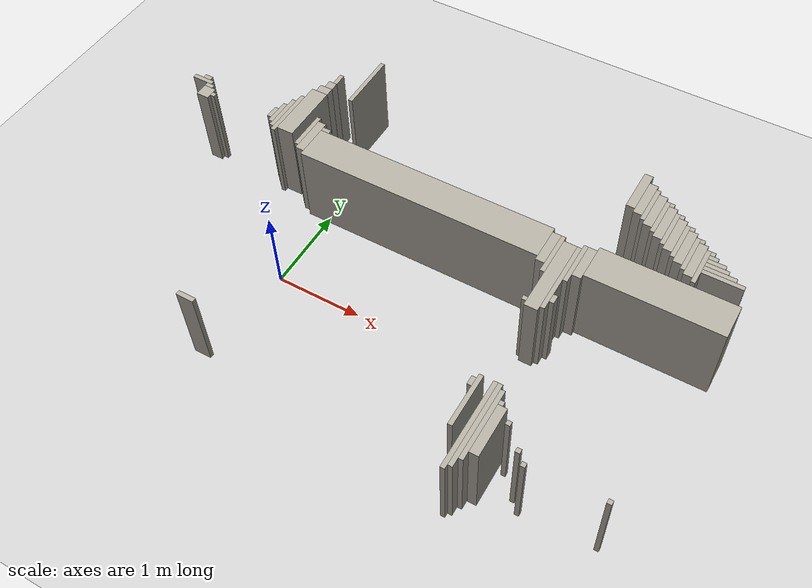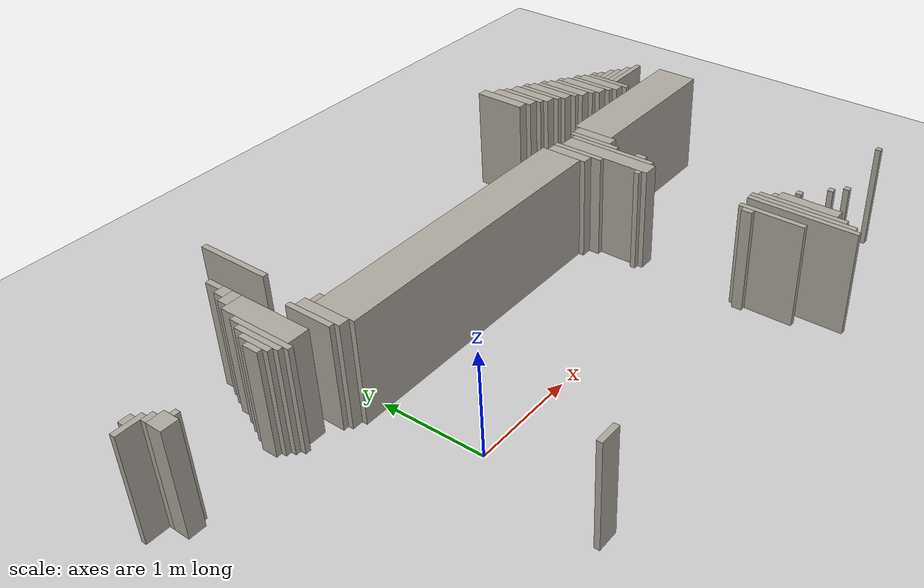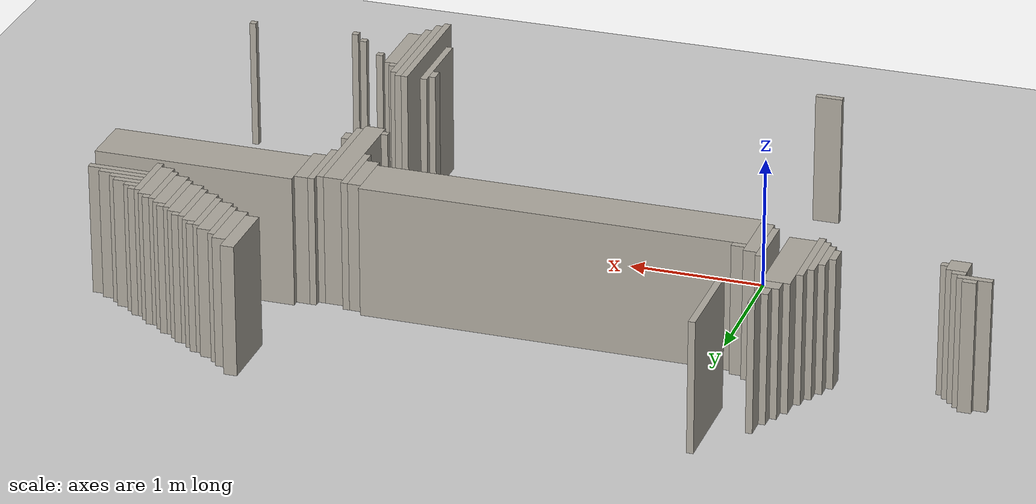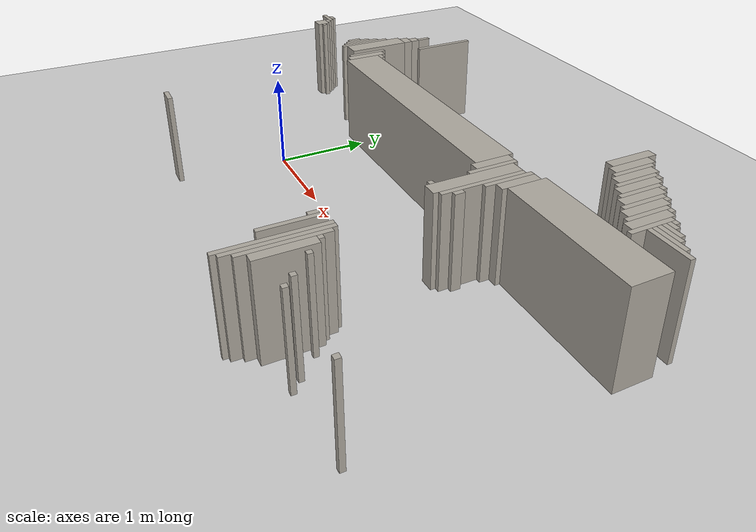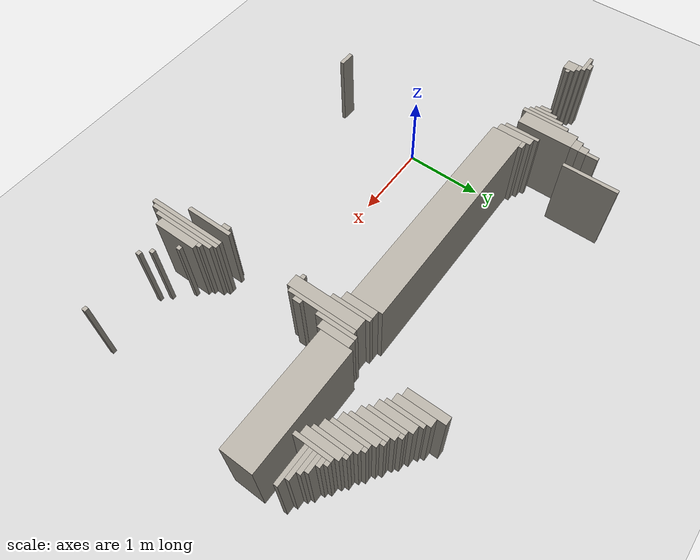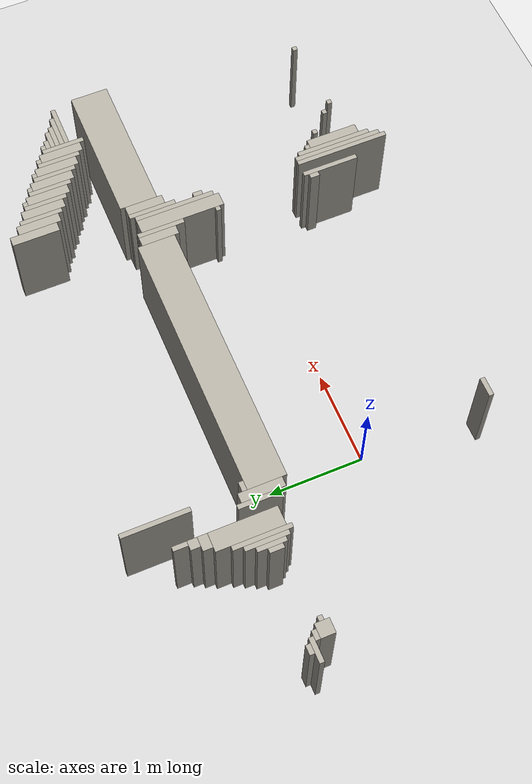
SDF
<sdf version="1.6">
 <world name="fr079_office">
  <include><uri>model://sun</uri></include>
  <include><uri>model://ground_plane</uri></include>
  <model name="fr079_office_walls">
   <static>true</static>
   <link name="w1643">
    <pose>2.927 -1.056 0.500 0 0 0</pose>
    <collision name="c"><geometry><box><size>0.050 1.000 1.000</size></box></geometry></collision>
    <visual name="v">
     <geometry><box><size>0.050 1.000 1.000</size></box></geometry>
     <material><ambient>0.68 0.66 0.62 1</ambient><diffuse>0.68 0.66 0.62 1</diffuse></material>
    </visual>
   </link>
   <link name="w1670">
    <pose>2.977 -1.031 0.500 0 0 0</pose>
    <collision name="c"><geometry><box><size>0.050 0.950 1.000</size></box></geometry></collision>
    <visual name="v">
     <geometry><box><size>0.050 0.950 1.000</size></box></geometry>
     <material><ambient>0.68 0.66 0.62 1</ambient><diffuse>0.68 0.66 0.62 1</diffuse></material>
    </visual>
   </link>
   <link name="w1696">
    <pose>3.027 -1.006 0.500 0 0 0</pose>
    <collision name="c"><geometry><box><size>0.050 0.800 1.000</size></box></geometry></collision>
    <visual name="v">
     <geometry><box><size>0.050 0.800 1.000</size></box></geometry>
     <material><ambient>0.68 0.66 0.62 1</ambient><diffuse>0.68 0.66 0.62 1</diffuse></material>
    </visual>
   </link>
   <link name="w1724">
    <pose>3.102 -1.031 0.500 0 0 0</pose>
    <collision name="c"><geometry><box><size>0.100 0.550 1.000</size></box></geometry></collision>
    <visual name="v">
     <geometry><box><size>0.100 0.550 1.000</size></box></geometry>
     <material><ambient>0.68 0.66 0.62 1</ambient><diffuse>0.68 0.66 0.62 1</diffuse></material>
    </visual>
   </link>
   <link name="w1745">
    <pose>-0.148 -1.181 0.500 0 0 0</pose>
    <collision name="c"><geometry><box><size>0.200 0.050 1.000</size></box></geometry></collision>
    <visual name="v">
     <geometry><box><size>0.200 0.050 1.000</size></box></geometry>
     <material><ambient>0.68 0.66 0.62 1</ambient><diffuse>0.68 0.66 0.62 1</diffuse></material>
    </visual>
   </link>
   <link name="w1746">
    <pose>3.527 -1.181 0.500 0 0 0</pose>
    <collision name="c"><geometry><box><size>0.050 0.050 1.000</size></box></geometry></collision>
    <visual name="v">
     <geometry><box><size>0.050 0.050 1.000</size></box></geometry>
     <material><ambient>0.68 0.66 0.62 1</ambient><diffuse>0.68 0.66 0.62 1</diffuse></material>
    </visual>
   </link>
   <link name="w1750">
    <pose>2.777 -0.856 0.500 0 0 0</pose>
    <collision name="c"><geometry><box><size>0.050 0.600 1.000</size></box></geometry></collision>
    <visual name="v">
     <geometry><box><size>0.050 0.600 1.000</size></box></geometry>
     <material><ambient>0.68 0.66 0.62 1</ambient><diffuse>0.68 0.66 0.62 1</diffuse></material>
    </visual>
   </link>
   <link name="w1751">
    <pose>4.327 -1.131 0.500 0 0 0</pose>
    <collision name="c"><geometry><box><size>0.050 0.050 1.000</size></box></geometry></collision>
    <visual name="v">
     <geometry><box><size>0.050 0.050 1.000</size></box></geometry>
     <material><ambient>0.68 0.66 0.62 1</ambient><diffuse>0.68 0.66 0.62 1</diffuse></material>
    </visual>
   </link>
   <link name="w1757">
    <pose>3.427 -1.081 0.500 0 0 0</pose>
    <collision name="c"><geometry><box><size>0.050 0.050 1.000</size></box></geometry></collision>
    <visual name="v">
     <geometry><box><size>0.050 0.050 1.000</size></box></geometry>
     <material><ambient>0.68 0.66 0.62 1</ambient><diffuse>0.68 0.66 0.62 1</diffuse></material>
    </visual>
   </link>
   <link name="w1774">
    <pose>3.227 -0.881 0.500 0 0 0</pose>
    <collision name="c"><geometry><box><size>0.050 0.050 1.000</size></box></geometry></collision>
    <visual name="v">
     <geometry><box><size>0.050 0.050 1.000</size></box></geometry>
     <material><ambient>0.68 0.66 0.62 1</ambient><diffuse>0.68 0.66 0.62 1</diffuse></material>
    </visual>
   </link>
   <link name="w1783">
    <pose>3.077 -0.731 0.500 0 0 0</pose>
    <collision name="c"><geometry><box><size>0.050 0.050 1.000</size></box></geometry></collision>
    <visual name="v">
     <geometry><box><size>0.050 0.050 1.000</size></box></geometry>
     <material><ambient>0.68 0.66 0.62 1</ambient><diffuse>0.68 0.66 0.62 1</diffuse></material>
    </visual>
   </link>
   <link name="w1789">
    <pose>2.727 -0.656 0.500 0 0 0</pose>
    <collision name="c"><geometry><box><size>0.050 0.100 1.000</size></box></geometry></collision>
    <visual name="v">
     <geometry><box><size>0.050 0.100 1.000</size></box></geometry>
     <material><ambient>0.68 0.66 0.62 1</ambient><diffuse>0.68 0.66 0.62 1</diffuse></material>
    </visual>
   </link>
   <link name="w1799">
    <pose>2.827 0.794 0.500 0 0 0</pose>
    <collision name="c"><geometry><box><size>0.150 0.900 1.000</size></box></geometry></collision>
    <visual name="v">
     <geometry><box><size>0.150 0.900 1.000</size></box></geometry>
     <material><ambient>0.68 0.66 0.62 1</ambient><diffuse>0.68 0.66 0.62 1</diffuse></material>
    </visual>
   </link>
   <link name="w1801">
    <pose>2.727 0.419 0.500 0 0 0</pose>
    <collision name="c"><geometry><box><size>0.050 0.050 1.000</size></box></geometry></collision>
    <visual name="v">
     <geometry><box><size>0.050 0.050 1.000</size></box></geometry>
     <material><ambient>0.68 0.66 0.62 1</ambient><diffuse>0.68 0.66 0.62 1</diffuse></material>
    </visual>
   </link>
   <link name="w1802">
    <pose>2.927 0.819 0.500 0 0 0</pose>
    <collision name="c"><geometry><box><size>0.050 0.850 1.000</size></box></geometry></collision>
    <visual name="v">
     <geometry><box><size>0.050 0.850 1.000</size></box></geometry>
     <material><ambient>0.68 0.66 0.62 1</ambient><diffuse>0.68 0.66 0.62 1</diffuse></material>
    </visual>
   </link>
   <link name="w1808">
    <pose>2.977 0.544 0.500 0 0 0</pose>
    <collision name="c"><geometry><box><size>0.050 0.100 1.000</size></box></geometry></collision>
    <visual name="v">
     <geometry><box><size>0.050 0.100 1.000</size></box></geometry>
     <material><ambient>0.68 0.66 0.62 1</ambient><diffuse>0.68 0.66 0.62 1</diffuse></material>
    </visual>
   </link>
   <link name="w1817">
    <pose>2.727 1.044 0.500 0 0 0</pose>
    <collision name="c"><geometry><box><size>0.050 0.500 1.000</size></box></geometry></collision>
    <visual name="v">
     <geometry><box><size>0.050 0.500 1.000</size></box></geometry>
     <material><ambient>0.68 0.66 0.62 1</ambient><diffuse>0.68 0.66 0.62 1</diffuse></material>
    </visual>
   </link>
   <link name="w1818">
    <pose>2.977 1.044 0.500 0 0 0</pose>
    <collision name="c"><geometry><box><size>0.050 0.500 1.000</size></box></geometry></collision>
    <visual name="v">
     <geometry><box><size>0.050 0.500 1.000</size></box></geometry>
     <material><ambient>0.68 0.66 0.62 1</ambient><diffuse>0.68 0.66 0.62 1</diffuse></material>
    </visual>
   </link>
   <link name="w1820">
    <pose>2.652 1.094 0.500 0 0 0</pose>
    <collision name="c"><geometry><box><size>0.100 0.400 1.000</size></box></geometry></collision>
    <visual name="v">
     <geometry><box><size>0.100 0.400 1.000</size></box></geometry>
     <material><ambient>0.68 0.66 0.62 1</ambient><diffuse>0.68 0.66 0.62 1</diffuse></material>
    </visual>
   </link>
   <link name="w1821">
    <pose>3.052 1.094 0.500 0 0 0</pose>
    <collision name="c"><geometry><box><size>0.100 0.400 1.000</size></box></geometry></collision>
    <visual name="v">
     <geometry><box><size>0.100 0.400 1.000</size></box></geometry>
     <material><ambient>0.68 0.66 0.62 1</ambient><diffuse>0.68 0.66 0.62 1</diffuse></material>
    </visual>
   </link>
   <link name="w1824">
    <pose>1.177 1.144 0.500 0 0 0</pose>
    <collision name="c"><geometry><box><size>2.850 0.400 1.000</size></box></geometry></collision>
    <visual name="v">
     <geometry><box><size>2.850 0.400 1.000</size></box></geometry>
     <material><ambient>0.68 0.66 0.62 1</ambient><diffuse>0.68 0.66 0.62 1</diffuse></material>
    </visual>
   </link>
   <link name="w1825">
    <pose>3.852 1.144 0.500 0 0 0</pose>
    <collision name="c"><geometry><box><size>1.500 0.400 1.000</size></box></geometry></collision>
    <visual name="v">
     <geometry><box><size>1.500 0.400 1.000</size></box></geometry>
     <material><ambient>0.68 0.66 0.62 1</ambient><diffuse>0.68 0.66 0.62 1</diffuse></material>
    </visual>
   </link>
   <link name="w1831">
    <pose>-0.298 1.219 0.500 0 0 0</pose>
    <collision name="c"><geometry><box><size>0.100 0.450 1.000</size></box></geometry></collision>
    <visual name="v">
     <geometry><box><size>0.100 0.450 1.000</size></box></geometry>
     <material><ambient>0.68 0.66 0.62 1</ambient><diffuse>0.68 0.66 0.62 1</diffuse></material>
    </visual>
   </link>
   <link name="w1846">
    <pose>-0.373 1.269 0.500 0 0 0</pose>
    <collision name="c"><geometry><box><size>0.050 0.450 1.000</size></box></geometry></collision>
    <visual name="v">
     <geometry><box><size>0.050 0.450 1.000</size></box></geometry>
     <material><ambient>0.68 0.66 0.62 1</ambient><diffuse>0.68 0.66 0.62 1</diffuse></material>
    </visual>
   </link>
   <link name="w1865">
    <pose>-0.723 1.394 0.500 0 0 0</pose>
    <collision name="c"><geometry><box><size>0.050 0.600 1.000</size></box></geometry></collision>
    <visual name="v">
     <geometry><box><size>0.050 0.600 1.000</size></box></geometry>
     <material><ambient>0.68 0.66 0.62 1</ambient><diffuse>0.68 0.66 0.62 1</diffuse></material>
    </visual>
   </link>
   <link name="w1889">
    <pose>-1.723 1.219 0.500 0 0 0</pose>
    <collision name="c"><geometry><box><size>0.150 0.150 1.000</size></box></geometry></collision>
    <visual name="v">
     <geometry><box><size>0.150 0.150 1.000</size></box></geometry>
     <material><ambient>0.68 0.66 0.62 1</ambient><diffuse>0.68 0.66 0.62 1</diffuse></material>
    </visual>
   </link>
   <link name="w1890">
    <pose>-0.773 1.369 0.500 0 0 0</pose>
    <collision name="c"><geometry><box><size>0.050 0.450 1.000</size></box></geometry></collision>
    <visual name="v">
     <geometry><box><size>0.050 0.450 1.000</size></box></geometry>
     <material><ambient>0.68 0.66 0.62 1</ambient><diffuse>0.68 0.66 0.62 1</diffuse></material>
    </visual>
   </link>
   <link name="w1891">
    <pose>-0.598 1.494 0.500 0 0 0</pose>
    <collision name="c"><geometry><box><size>0.200 0.700 1.000</size></box></geometry></collision>
    <visual name="v">
     <geometry><box><size>0.200 0.700 1.000</size></box></geometry>
     <material><ambient>0.68 0.66 0.62 1</ambient><diffuse>0.68 0.66 0.62 1</diffuse></material>
    </visual>
   </link>
   <link name="w1920">
    <pose>-1.623 1.219 0.500 0 0 0</pose>
    <collision name="c"><geometry><box><size>0.050 0.050 1.000</size></box></geometry></collision>
    <visual name="v">
     <geometry><box><size>0.050 0.050 1.000</size></box></geometry>
     <material><ambient>0.68 0.66 0.62 1</ambient><diffuse>0.68 0.66 0.62 1</diffuse></material>
    </visual>
   </link>
   <link name="w1921">
    <pose>-0.823 1.344 0.500 0 0 0</pose>
    <collision name="c"><geometry><box><size>0.050 0.300 1.000</size></box></geometry></collision>
    <visual name="v">
     <geometry><box><size>0.050 0.300 1.000</size></box></geometry>
     <material><ambient>0.68 0.66 0.62 1</ambient><diffuse>0.68 0.66 0.62 1</diffuse></material>
    </visual>
   </link>
   <link name="w1949">
    <pose>-0.873 1.319 0.500 0 0 0</pose>
    <collision name="c"><geometry><box><size>0.050 0.150 1.000</size></box></geometry></collision>
    <visual name="v">
     <geometry><box><size>0.050 0.150 1.000</size></box></geometry>
     <material><ambient>0.68 0.66 0.62 1</ambient><diffuse>0.68 0.66 0.62 1</diffuse></material>
    </visual>
   </link>
   <link name="w1966">
    <pose>-1.748 1.319 0.500 0 0 0</pose>
    <collision name="c"><geometry><box><size>0.100 0.050 1.000</size></box></geometry></collision>
    <visual name="v">
     <geometry><box><size>0.100 0.050 1.000</size></box></geometry>
     <material><ambient>0.68 0.66 0.62 1</ambient><diffuse>0.68 0.66 0.62 1</diffuse></material>
    </visual>
   </link>
   <link name="w1980">
    <pose>-1.873 1.369 0.500 0 0 0</pose>
    <collision name="c"><geometry><box><size>0.250 0.050 1.000</size></box></geometry></collision>
    <visual name="v">
     <geometry><box><size>0.250 0.050 1.000</size></box></geometry>
     <material><ambient>0.68 0.66 0.62 1</ambient><diffuse>0.68 0.66 0.62 1</diffuse></material>
    </visual>
   </link>
   <link name="w1981">
    <pose>-0.198 1.369 0.500 0 0 0</pose>
    <collision name="c"><geometry><box><size>0.100 0.050 1.000</size></box></geometry></collision>
    <visual name="v">
     <geometry><box><size>0.100 0.050 1.000</size></box></geometry>
     <material><ambient>0.68 0.66 0.62 1</ambient><diffuse>0.68 0.66 0.62 1</diffuse></material>
    </visual>
   </link>
   <link name="w1992">
    <pose>-1.848 1.419 0.500 0 0 0</pose>
    <collision name="c"><geometry><box><size>0.100 0.050 1.000</size></box></geometry></collision>
    <visual name="v">
     <geometry><box><size>0.100 0.050 1.000</size></box></geometry>
     <material><ambient>0.68 0.66 0.62 1</ambient><diffuse>0.68 0.66 0.62 1</diffuse></material>
    </visual>
   </link>
   <link name="w1993">
    <pose>4.077 1.619 0.500 0 0 0</pose>
    <collision name="c"><geometry><box><size>0.050 0.450 1.000</size></box></geometry></collision>
    <visual name="v">
     <geometry><box><size>0.050 0.450 1.000</size></box></geometry>
     <material><ambient>0.68 0.66 0.62 1</ambient><diffuse>0.68 0.66 0.62 1</diffuse></material>
    </visual>
   </link>
   <link name="w2012">
    <pose>4.002 1.669 0.500 0 0 0</pose>
    <collision name="c"><geometry><box><size>0.100 0.450 1.000</size></box></geometry></collision>
    <visual name="v">
     <geometry><box><size>0.100 0.450 1.000</size></box></geometry>
     <material><ambient>0.68 0.66 0.62 1</ambient><diffuse>0.68 0.66 0.62 1</diffuse></material>
    </visual>
   </link>
   <link name="w2029">
    <pose>3.927 1.719 0.500 0 0 0</pose>
    <collision name="c"><geometry><box><size>0.050 0.450 1.000</size></box></geometry></collision>
    <visual name="v">
     <geometry><box><size>0.050 0.450 1.000</size></box></geometry>
     <material><ambient>0.68 0.66 0.62 1</ambient><diffuse>0.68 0.66 0.62 1</diffuse></material>
    </visual>
   </link>
   <link name="w2045">
    <pose>3.852 1.769 0.500 0 0 0</pose>
    <collision name="c"><geometry><box><size>0.100 0.450 1.000</size></box></geometry></collision>
    <visual name="v">
     <geometry><box><size>0.100 0.450 1.000</size></box></geometry>
     <material><ambient>0.68 0.66 0.62 1</ambient><diffuse>0.68 0.66 0.62 1</diffuse></material>
    </visual>
   </link>
   <link name="w2046">
    <pose>4.327 1.569 0.500 0 0 0</pose>
    <collision name="c"><geometry><box><size>0.450 0.050 1.000</size></box></geometry></collision>
    <visual name="v">
     <geometry><box><size>0.450 0.050 1.000</size></box></geometry>
     <material><ambient>0.68 0.66 0.62 1</ambient><diffuse>0.68 0.66 0.62 1</diffuse></material>
    </visual>
   </link>
   <link name="w2060">
    <pose>3.777 1.819 0.500 0 0 0</pose>
    <collision name="c"><geometry><box><size>0.050 0.450 1.000</size></box></geometry></collision>
    <visual name="v">
     <geometry><box><size>0.050 0.450 1.000</size></box></geometry>
     <material><ambient>0.68 0.66 0.62 1</ambient><diffuse>0.68 0.66 0.62 1</diffuse></material>
    </visual>
   </link>
   <link name="w2061">
    <pose>4.277 1.619 0.500 0 0 0</pose>
    <collision name="c"><geometry><box><size>0.350 0.050 1.000</size></box></geometry></collision>
    <visual name="v">
     <geometry><box><size>0.350 0.050 1.000</size></box></geometry>
     <material><ambient>0.68 0.66 0.62 1</ambient><diffuse>0.68 0.66 0.62 1</diffuse></material>
    </visual>
   </link>
   <link name="w2073">
    <pose>3.702 1.869 0.500 0 0 0</pose>
    <collision name="c"><geometry><box><size>0.100 0.450 1.000</size></box></geometry></collision>
    <visual name="v">
     <geometry><box><size>0.100 0.450 1.000</size></box></geometry>
     <material><ambient>0.68 0.66 0.62 1</ambient><diffuse>0.68 0.66 0.62 1</diffuse></material>
    </visual>
   </link>
   <link name="w2074">
    <pose>4.227 1.669 0.500 0 0 0</pose>
    <collision name="c"><geometry><box><size>0.250 0.050 1.000</size></box></geometry></collision>
    <visual name="v">
     <geometry><box><size>0.250 0.050 1.000</size></box></geometry>
     <material><ambient>0.68 0.66 0.62 1</ambient><diffuse>0.68 0.66 0.62 1</diffuse></material>
    </visual>
   </link>
   <link name="w2086">
    <pose>3.627 1.919 0.500 0 0 0</pose>
    <collision name="c"><geometry><box><size>0.050 0.450 1.000</size></box></geometry></collision>
    <visual name="v">
     <geometry><box><size>0.050 0.450 1.000</size></box></geometry>
     <material><ambient>0.68 0.66 0.62 1</ambient><diffuse>0.68 0.66 0.62 1</diffuse></material>
    </visual>
   </link>
   <link name="w2087">
    <pose>4.202 1.719 0.500 0 0 0</pose>
    <collision name="c"><geometry><box><size>0.200 0.050 1.000</size></box></geometry></collision>
    <visual name="v">
     <geometry><box><size>0.200 0.050 1.000</size></box></geometry>
     <material><ambient>0.68 0.66 0.62 1</ambient><diffuse>0.68 0.66 0.62 1</diffuse></material>
    </visual>
   </link>
   <link name="w2098">
    <pose>3.552 1.969 0.500 0 0 0</pose>
    <collision name="c"><geometry><box><size>0.100 0.450 1.000</size></box></geometry></collision>
    <visual name="v">
     <geometry><box><size>0.100 0.450 1.000</size></box></geometry>
     <material><ambient>0.68 0.66 0.62 1</ambient><diffuse>0.68 0.66 0.62 1</diffuse></material>
    </visual>
   </link>
   <link name="w2099">
    <pose>4.152 1.769 0.500 0 0 0</pose>
    <collision name="c"><geometry><box><size>0.100 0.050 1.000</size></box></geometry></collision>
    <visual name="v">
     <geometry><box><size>0.100 0.050 1.000</size></box></geometry>
     <material><ambient>0.68 0.66 0.62 1</ambient><diffuse>0.68 0.66 0.62 1</diffuse></material>
    </visual>
   </link>
   <link name="w2116">
    <pose>3.477 2.019 0.500 0 0 0</pose>
    <collision name="c"><geometry><box><size>0.050 0.450 1.000</size></box></geometry></collision>
    <visual name="v">
     <geometry><box><size>0.050 0.450 1.000</size></box></geometry>
     <material><ambient>0.68 0.66 0.62 1</ambient><diffuse>0.68 0.66 0.62 1</diffuse></material>
    </visual>
   </link>
   <link name="w2117">
    <pose>4.127 1.819 0.500 0 0 0</pose>
    <collision name="c"><geometry><box><size>0.050 0.050 1.000</size></box></geometry></collision>
    <visual name="v">
     <geometry><box><size>0.050 0.050 1.000</size></box></geometry>
     <material><ambient>0.68 0.66 0.62 1</ambient><diffuse>0.68 0.66 0.62 1</diffuse></material>
    </visual>
   </link>
   <link name="w2139">
    <pose>-0.573 1.894 0.500 0 0 0</pose>
    <collision name="c"><geometry><box><size>0.150 0.100 1.000</size></box></geometry></collision>
    <visual name="v">
     <geometry><box><size>0.150 0.100 1.000</size></box></geometry>
     <material><ambient>0.68 0.66 0.62 1</ambient><diffuse>0.68 0.66 0.62 1</diffuse></material>
    </visual>
   </link>
   <link name="w2140">
    <pose>3.402 2.069 0.500 0 0 0</pose>
    <collision name="c"><geometry><box><size>0.100 0.450 1.000</size></box></geometry></collision>
    <visual name="v">
     <geometry><box><size>0.100 0.450 1.000</size></box></geometry>
     <material><ambient>0.68 0.66 0.62 1</ambient><diffuse>0.68 0.66 0.62 1</diffuse></material>
    </visual>
   </link>
   <link name="w2150">
    <pose>-0.223 2.244 0.500 0 0 0</pose>
    <collision name="c"><geometry><box><size>0.050 0.700 1.000</size></box></geometry></collision>
    <visual name="v">
     <geometry><box><size>0.050 0.700 1.000</size></box></geometry>
     <material><ambient>0.68 0.66 0.62 1</ambient><diffuse>0.68 0.66 0.62 1</diffuse></material>
    </visual>
   </link>
   <link name="w2151">
    <pose>3.327 2.119 0.500 0 0 0</pose>
    <collision name="c"><geometry><box><size>0.050 0.450 1.000</size></box></geometry></collision>
    <visual name="v">
     <geometry><box><size>0.050 0.450 1.000</size></box></geometry>
     <material><ambient>0.68 0.66 0.62 1</ambient><diffuse>0.68 0.66 0.62 1</diffuse></material>
    </visual>
   </link>
   <link name="w2152">
    <pose>3.977 1.919 0.500 0 0 0</pose>
    <collision name="c"><geometry><box><size>0.050 0.050 1.000</size></box></geometry></collision>
    <visual name="v">
     <geometry><box><size>0.050 0.050 1.000</size></box></geometry>
     <material><ambient>0.68 0.66 0.62 1</ambient><diffuse>0.68 0.66 0.62 1</diffuse></material>
    </visual>
   </link>
   <link name="w2162">
    <pose>-0.548 1.994 0.500 0 0 0</pose>
    <collision name="c"><geometry><box><size>0.100 0.100 1.000</size></box></geometry></collision>
    <visual name="v">
     <geometry><box><size>0.100 0.100 1.000</size></box></geometry>
     <material><ambient>0.68 0.66 0.62 1</ambient><diffuse>0.68 0.66 0.62 1</diffuse></material>
    </visual>
   </link>
   <link name="w2163">
    <pose>3.252 2.169 0.500 0 0 0</pose>
    <collision name="c"><geometry><box><size>0.100 0.450 1.000</size></box></geometry></collision>
    <visual name="v">
     <geometry><box><size>0.100 0.450 1.000</size></box></geometry>
     <material><ambient>0.68 0.66 0.62 1</ambient><diffuse>0.68 0.66 0.62 1</diffuse></material>
    </visual>
   </link>
   <link name="w2176">
    <pose>3.152 2.244 0.500 0 0 0</pose>
    <collision name="c"><geometry><box><size>0.100 0.500 1.000</size></box></geometry></collision>
    <visual name="v">
     <geometry><box><size>0.100 0.500 1.000</size></box></geometry>
     <material><ambient>0.68 0.66 0.62 1</ambient><diffuse>0.68 0.66 0.62 1</diffuse></material>
    </visual>
   </link>
   <link name="w2177">
    <pose>3.827 2.019 0.500 0 0 0</pose>
    <collision name="c"><geometry><box><size>0.050 0.050 1.000</size></box></geometry></collision>
    <visual name="v">
     <geometry><box><size>0.050 0.050 1.000</size></box></geometry>
     <material><ambient>0.68 0.66 0.62 1</ambient><diffuse>0.68 0.66 0.62 1</diffuse></material>
    </visual>
   </link>
   <link name="w2186">
    <pose>-0.523 2.119 0.500 0 0 0</pose>
    <collision name="c"><geometry><box><size>0.050 0.150 1.000</size></box></geometry></collision>
    <visual name="v">
     <geometry><box><size>0.050 0.150 1.000</size></box></geometry>
     <material><ambient>0.68 0.66 0.62 1</ambient><diffuse>0.68 0.66 0.62 1</diffuse></material>
    </visual>
   </link>
   <link name="w2198">
    <pose>3.677 2.119 0.500 0 0 0</pose>
    <collision name="c"><geometry><box><size>0.050 0.050 1.000</size></box></geometry></collision>
    <visual name="v">
     <geometry><box><size>0.050 0.050 1.000</size></box></geometry>
     <material><ambient>0.68 0.66 0.62 1</ambient><diffuse>0.68 0.66 0.62 1</diffuse></material>
    </visual>
   </link>
   <link name="w2214">
    <pose>3.527 2.219 0.500 0 0 0</pose>
    <collision name="c"><geometry><box><size>0.050 0.050 1.000</size></box></geometry></collision>
    <visual name="v">
     <geometry><box><size>0.050 0.050 1.000</size></box></geometry>
     <material><ambient>0.68 0.66 0.62 1</ambient><diffuse>0.68 0.66 0.62 1</diffuse></material>
    </visual>
   </link>
  </model>
 </world>
</sdf>
